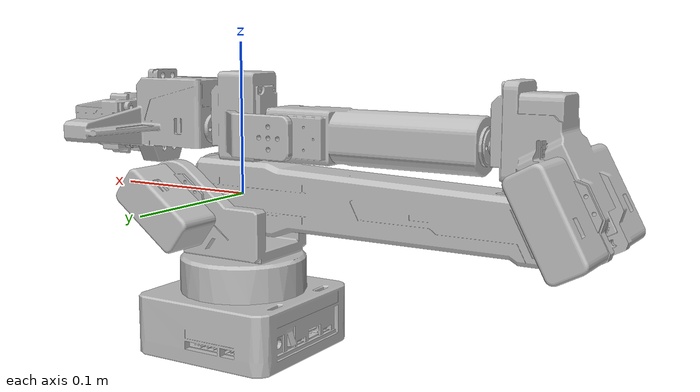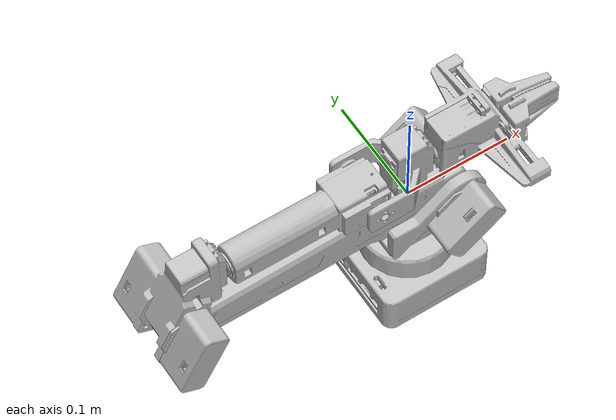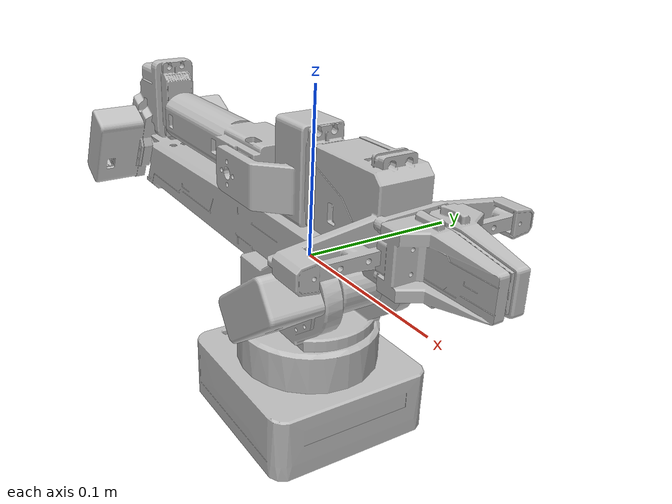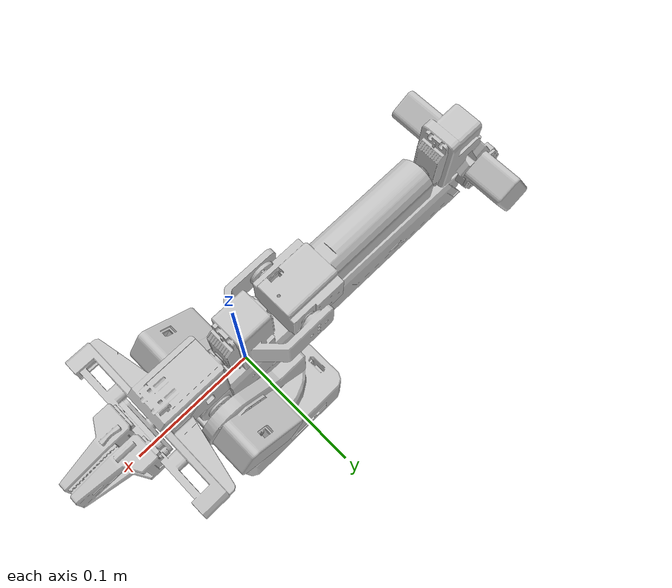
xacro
<?xml version="1.0" encoding="utf-8"?>
<robot
  name="zyarm_x1_standard"
  xmlns:xacro="http://www.ros.org/wiki/xacro">
  <!-- use_ros2_control=false: 只做模型显示或真机串口桥接 -->
  <!-- use_ros2_control=true:  展开 ros2_control 标签，供控制器链和 MoveIt 仿真链使用 -->
  <xacro:arg name="use_ros2_control" default="true" />
  <xacro:arg name="use_gazebo" default="false" />
  <xacro:arg name="use_sim_cameras" default="false" />
  <xacro:arg name="use_real_hardware_interface" default="false" />
  <xacro:arg name="real_hardware_port" default="/dev/ttyUSB0" />
  <xacro:arg name="real_hardware_baud_rate" default="230400" />
  <xacro:arg name="real_hardware_read_timeout_ms" default="20" />
  <xacro:arg name="real_hardware_write_timeout_ms" default="20" />
  <xacro:arg name="real_hardware_activation_status_timeout_ms" default="1000" />
  <xacro:arg name="real_hardware_status_stale_warn_ms" default="100" />
  <xacro:arg name="real_hardware_status_stale_error_ms" default="1000" />
  <xacro:arg name="real_hardware_stale_log_period_ms" default="2000" />
  <xacro:arg name="real_hardware_reset_rts_dtr" default="false" />
  <xacro:arg name="real_hardware_reset_rts_dtr_quiet_ms" default="0" />
  <xacro:arg name="real_hardware_arm_hw_offsets_deg" default="0 -180 90 0 0 0" />
  <xacro:arg name="real_hardware_arm_hw_signs" default="1 1 1 1 1 1" />
  <xacro:arg name="real_hardware_claw_travel_m" default="0.034" />
  <xacro:arg name="real_hardware_claw_command_max" default="100" />
  <xacro:arg
    name="gazebo_camera_config_file"
    default="" />
  <xacro:arg
    name="gazebo_controller_config_file"
    default="" />
  <xacro:property name="use_ros2_control" value="$(arg use_ros2_control)" />
  <xacro:property name="use_gazebo" value="$(arg use_gazebo)" />
  <xacro:property name="use_sim_cameras" value="$(arg use_sim_cameras)" />
  <xacro:property name="use_real_hardware_interface" value="$(arg use_real_hardware_interface)" />
  <xacro:property name="arm_effort_limit" value="60.0" />
  <xacro:property name="gripper_effort_limit" value="160.0" />
  <xacro:property name="arm_base_velocity_limit" value="3.0" />
  <xacro:property name="arm_wrist_velocity_limit" value="4.0" />
  <xacro:property name="gripper_velocity_limit" value="0.12" />
  <xacro:property
    name="gazebo_camera_config_file"
    value="$(arg gazebo_camera_config_file)" />
  <xacro:property
    name="gazebo_controller_config_file"
    value="$(arg gazebo_controller_config_file)" />
  <!-- 下方主体仍基本保持 SolidWorks 导出结构，减少手工改动带来的模型漂移。 -->
  <link
    name="base_link">
    <inertial>
      <origin
        xyz="0.00091157 -0.00062627 -0.075733"
        rpy="0 0 0" />
      <mass
        value="0.26029" />
      <inertia
        ixx="0.00028525"
        ixy="-9.6012E-07"
        ixz="4.2857E-06"
        iyy="0.00026365"
        iyz="-1.2773E-06"
        izz="0.00047532" />
    </inertial>
    <visual>
      <origin
        xyz="0 0 0"
        rpy="0 0 0" />
      <geometry>
        <mesh
          filename="package://zyarm_description/meshes/x1_standard/base_link.STL" />
      </geometry>
      <material
        name="">
        <color
          rgba="0.75294 0.75294 0.75294 1" />
      </material>
    </visual>
    <collision>
      <origin
        xyz="0 0 0"
        rpy="0 0 0" />
      <geometry>
        <mesh
          filename="package://zyarm_description/meshes/x1_standard/base_link.STL" />
      </geometry>
    </collision>
  </link>
  <link
    name="link1">
    <inertial>
      <origin
        xyz="0.018353 -7.2605E-08 -0.013108"
        rpy="0 0 0" />
      <mass
        value="0.12888" />
      <inertia
        ixx="6.1663E-05"
        ixy="1.6593E-10"
        ixz="-1.5674E-05"
        iyy="8.0681E-05"
        iyz="-2.0696E-10"
        izz="8.7038E-05" />
    </inertial>
    <visual>
      <origin
        xyz="0 0 0"
        rpy="0 0 0" />
      <geometry>
        <mesh
          filename="package://zyarm_description/meshes/x1_standard/link1.STL" />
      </geometry>
      <material
        name="">
        <color
          rgba="0.75294 0.75294 0.75294 1" />
      </material>
    </visual>
    <collision>
      <origin
        xyz="0 0 0"
        rpy="0 0 0" />
      <geometry>
        <mesh
          filename="package://zyarm_description/meshes/x1_standard/link1.STL" />
      </geometry>
    </collision>
  </link>
  <joint
    name="joint0"
    type="revolute">
    <origin
      xyz="0 0 0"
      rpy="0 0 0" />
    <parent
      link="base_link" />
    <child
      link="link1" />
    <axis
      xyz="0 0 1" />
    <limit
      lower="-3.1415"
      upper="3.1415"
      effort="${arm_effort_limit}"
      velocity="${arm_base_velocity_limit}" />
  </joint>
  <link
    name="link2">
    <inertial>
      <origin
        xyz="0.1142 -0.0004833 4.5225E-07"
        rpy="0 0 0" />
      <mass
        value="0.18935" />
      <inertia
        ixx="4.7355E-05"
        ixy="1.0633E-05"
        ixz="3.8212E-10"
        iyy="0.00030578"
        iyz="6.2531E-13"
        izz="0.00031996" />
    </inertial>
    <visual>
      <origin
        xyz="0 0 0"
        rpy="0 0 0" />
      <geometry>
        <mesh
          filename="package://zyarm_description/meshes/x1_standard/link2.STL" />
      </geometry>
      <material
        name="">
        <color
          rgba="0.75294 0.75294 0.75294 1" />
      </material>
    </visual>
    <collision>
      <origin
        xyz="0 0 0"
        rpy="0 0 0" />
      <geometry>
        <mesh
          filename="package://zyarm_description/meshes/x1_standard/link2.STL" />
      </geometry>
    </collision>
  </link>
  <joint
    name="joint1"
    type="revolute">
    <origin
      xyz="0.037 0 0"
      rpy="-1.5708 -3.1416 0" />
    <parent
      link="link1" />
    <child
      link="link2" />
    <axis
      xyz="0 0 1" />
    <limit
      lower="-0.05"
      upper="3.17659"
      effort="${arm_effort_limit}"
      velocity="${arm_base_velocity_limit}" />
  </joint>
  <link
    name="link3">
    <inertial>
      <origin
        xyz="0.022342 0.013918 1.0102E-06"
        rpy="0 0 0" />
      <mass
        value="0.11556" />
      <inertia
        ixx="2.8305E-05"
        ixy="-1.401E-05"
        ixz="3.0938E-09"
        iyy="4.826E-05"
        iyz="1.2509E-09"
        izz="5.5117E-05" />
    </inertial>
    <visual>
      <origin
        xyz="0 0 0"
        rpy="0 0 0" />
      <geometry>
        <mesh
          filename="package://zyarm_description/meshes/x1_standard/link3.STL" />
      </geometry>
      <material
        name="">
        <color
          rgba="0.75294 0.75294 0.75294 1" />
      </material>
    </visual>
    <collision>
      <origin
        xyz="0 0 0"
        rpy="0 0 0" />
      <geometry>
        <mesh
          filename="package://zyarm_description/meshes/x1_standard/link3.STL" />
      </geometry>
    </collision>
  </link>
  <joint
    name="joint2"
    type="revolute">
    <origin
      xyz="0.27 0.0024 0"
      rpy="0 0 1.5708" />
    <parent
      link="link2" />
    <child
      link="link3" />
    <axis
      xyz="0 0 1" />
    <limit
      lower="-3.1766"
      upper="0.035"
      effort="${arm_effort_limit}"
      velocity="${arm_base_velocity_limit}" />
  </joint>
  <link
    name="link4">
    <inertial>
      <origin
        xyz="3.359E-07 0.0002305 0.05375"
        rpy="0 0 0" />
      <mass
        value="0.063014" />
      <inertia
        ixx="9.4194E-05"
        ixy="-1.8203E-13"
        ixz="-4.9372E-12"
        iyy="9.4837E-05"
        iyz="3.6101E-07"
        izz="1.4643E-05" />
    </inertial>
    <visual>
      <origin
        xyz="0 0 0"
        rpy="0 0 0" />
      <geometry>
        <mesh
          filename="package://zyarm_description/meshes/x1_standard/link4.STL" />
      </geometry>
      <material
        name="">
        <color
          rgba="0.75294 0.75294 0.75294 1" />
      </material>
    </visual>
    <collision>
      <origin
        xyz="0 0 0"
        rpy="0 0 0" />
      <geometry>
        <mesh
          filename="package://zyarm_description/meshes/x1_standard/link4.STL" />
      </geometry>
    </collision>
  </link>
  <joint
    name="joint3"
    type="revolute">
    <origin
      xyz="0.039913 0.19 0"
      rpy="1.5708 0 0" />
    <parent
      link="link3" />
    <child
      link="link4" />
    <axis
      xyz="0 0 1" />
    <limit
      lower="-3.1416"
      upper="3.1416"
      effort="${arm_effort_limit}"
      velocity="${arm_wrist_velocity_limit}" />
  </joint>
  <link
    name="link5">
    <inertial>
      <origin
        xyz="0.0064731 0.033728 0.00014092"
        rpy="0 0 0" />
      <mass
        value="0.055716" />
      <inertia
        ixx="2.4408E-05"
        ixy="-1.842E-06"
        ixz="4.2863E-08"
        iyy="2.7394E-05"
        iyz="2.2654E-07"
        izz="2.3787E-05" />
    </inertial>
    <visual>
      <origin
        xyz="0 0 0"
        rpy="0 0 0" />
      <geometry>
        <mesh
          filename="package://zyarm_description/meshes/x1_standard/link5.STL" />
      </geometry>
      <material
        name="">
        <color
          rgba="0.75294 0.75294 0.75294 1" />
      </material>
    </visual>
    <collision>
      <origin
        xyz="0 0 0"
        rpy="0 0 0" />
      <geometry>
        <mesh
          filename="package://zyarm_description/meshes/x1_standard/link5.STL" />
      </geometry>
    </collision>
  </link>
  <joint
    name="joint4"
    type="revolute">
    <origin
      xyz="0 0 0"
      rpy="-1.5708 0 0" />
    <parent
      link="link4" />
    <child
      link="link5" />
    <axis
      xyz="0 0 1" />
    <limit
      lower="-1.745"
      upper="1.745"
      effort="${arm_effort_limit}"
      velocity="${arm_wrist_velocity_limit}" />
  </joint>
  <link
    name="link6">
    <inertial>
      <origin
        xyz="0.0056408 7.3513E-06 -0.10669"
        rpy="0 0 0" />
      <mass
        value="0.073553" />
      <inertia
        ixx="6.3575E-05"
        ixy="5.4249E-08"
        ixz="-2.3601E-06"
        iyy="2.4372E-05"
        iyz="5.4471E-09"
        izz="5.8246E-05" />
    </inertial>
    <visual>
      <origin
        xyz="0 0 0"
        rpy="0 0 0" />
      <geometry>
        <mesh
          filename="package://zyarm_description/meshes/x1_standard/link6.STL" />
      </geometry>
      <material
        name="">
        <color
          rgba="0.75294 0.75294 0.75294 1" />
      </material>
    </visual>
    <collision>
      <origin
        xyz="0 0 0"
        rpy="0 0 0" />
      <geometry>
        <mesh
          filename="package://zyarm_description/meshes/x1_standard/link6.STL" />
      </geometry>
    </collision>
  </link>
  <joint
    name="joint5"
    type="revolute">
    <origin
      xyz="0 0 0"
      rpy="1.5708 0 0" />
    <parent
      link="link5" />
    <child
      link="link6" />
    <axis
      xyz="0 0 1" />
    <limit
      lower="-3.1416"
      upper="3.1416"
      effort="${arm_effort_limit}"
      velocity="${arm_wrist_velocity_limit}" />
  </joint>
  <link
    name="claw1">
    <inertial>
      <origin
        xyz="0.0089049 0.035115 5.5012E-05"
        rpy="0 0 0" />
      <mass
        value="0.020468" />
      <inertia
        ixx="5.8019E-06"
        ixy="-6.6705E-07"
        ixz="-8.8771E-09"
        iyy="2.5773E-06"
        iyz="-2.527E-08"
        izz="4.3825E-06" />
    </inertial>
    <visual>
      <origin
        xyz="0 0 0"
        rpy="0 0 0" />
      <geometry>
        <mesh
          filename="package://zyarm_description/meshes/x1_standard/claw1.STL" />
      </geometry>
      <material
        name="">
        <color
          rgba="0.75294 0.75294 0.75294 1" />
      </material>
    </visual>
    <collision>
      <origin
        xyz="0 0 0"
        rpy="0 0 0" />
      <geometry>
        <mesh
          filename="package://zyarm_description/meshes/x1_standard/claw1.STL" />
      </geometry>
    </collision>
  </link>
  <joint
    name="joint6"
    type="prismatic">
    <origin
      xyz="0 0 -0.18675"
      rpy="1.5708 0 -1.5708" />
    <parent
      link="link6" />
    <child
      link="claw1" />
    <axis
      xyz="1 0 0" />
    <limit
      lower="0"
      upper="0.034"
      effort="${gripper_effort_limit}"
      velocity="${gripper_velocity_limit}" />
  </joint>
  <link
    name="claw2">
    <inertial>
      <origin
        xyz="0.0089049 0.035115 5.5012E-05"
        rpy="0 0 0" />
      <mass
        value="0.020468" />
      <inertia
        ixx="5.8019E-06"
        ixy="-6.6705E-07"
        ixz="-8.8771E-09"
        iyy="2.5773E-06"
        iyz="-2.527E-08"
        izz="4.3825E-06" />
    </inertial>
    <visual>
      <origin
        xyz="0 0 0"
        rpy="0 0 0" />
      <geometry>
        <mesh
          filename="package://zyarm_description/meshes/x1_standard/claw2.STL" />
      </geometry>
      <material
        name="">
        <color
          rgba="0.75294 0.75294 0.75294 1" />
      </material>
    </visual>
    <collision>
      <origin
        xyz="0 0 0"
        rpy="0 0 0" />
      <geometry>
        <mesh
          filename="package://zyarm_description/meshes/x1_standard/claw2.STL" />
      </geometry>
    </collision>
  </link>
  <joint
    name="joint7"
    type="prismatic">
    <origin
      xyz="0 0 -0.18675"
      rpy="1.5708 0 1.5708" />
    <parent
      link="link6" />
    <child
      link="claw2" />
    <axis
      xyz="1 0 0" />
    <xacro:unless value="${use_gazebo}">
      <mimic
        joint="joint6"
        multiplier="1.0"
        offset="0.0" />
    </xacro:unless>
    <limit
      lower="0"
      upper="0.034"
      effort="${gripper_effort_limit}"
      velocity="${gripper_velocity_limit}" />
  </joint>
  <link name="ee_link" />
  <joint name="ee_fixed_joint" type="fixed">
    <parent link="link6" />
    <child link="ee_link" />
    <origin xyz="0 0 -0.18675" rpy="1.5708 0 0" />
  </joint>
  <xacro:if value="${use_sim_cameras}">
    <xacro:property
      name="gazebo_camera_frames"
      value="${xacro.load_yaml(gazebo_camera_config_file)['camera_frames']}" />
    <link name="${gazebo_camera_frames['fixed']['link_frame']}" />
    <joint name="camera_fixed_joint" type="fixed">
      <parent link="base_link" />
      <child link="${gazebo_camera_frames['fixed']['link_frame']}" />
      <origin xyz="0.05 -0.30 0.45" rpy="-1.1 0 0" />
    </joint>
    <link name="${gazebo_camera_frames['fixed']['optical_frame']}" />
    <joint name="camera_fixed_optical_joint" type="fixed">
      <parent link="${gazebo_camera_frames['fixed']['link_frame']}" />
      <child link="${gazebo_camera_frames['fixed']['optical_frame']}" />
      <origin xyz="0 0 0" rpy="-1.5708 0 -1.5708" />
    </joint>
    <link name="${gazebo_camera_frames['wrist']['link_frame']}" />
    <joint name="camera_wrist_joint" type="fixed">
      <parent link="ee_link" />
      <child link="${gazebo_camera_frames['wrist']['link_frame']}" />
      <origin xyz="0.04 0.0 0.02" rpy="-1.57 0 -1.57" />
    </joint>
    <link name="${gazebo_camera_frames['wrist']['optical_frame']}" />
    <joint name="camera_wrist_optical_joint" type="fixed">
      <parent link="${gazebo_camera_frames['wrist']['link_frame']}" />
      <child link="${gazebo_camera_frames['wrist']['optical_frame']}" />
      <origin xyz="0 0 0" rpy="-1.5708 0 -1.5708" />
    </joint>
  </xacro:if>
  <xacro:if value="${use_ros2_control}">
    <ros2_control name="ZyarmX1StandardSystem" type="system">
      <hardware>
        <xacro:if value="${use_real_hardware_interface}">
          <plugin>zyarm_hardware_interface/ZyArmSystemHardware</plugin>
          <param name="port">$(arg real_hardware_port)</param>
          <param name="baud_rate">$(arg real_hardware_baud_rate)</param>
          <param name="read_timeout_ms">$(arg real_hardware_read_timeout_ms)</param>
          <param name="write_timeout_ms">$(arg real_hardware_write_timeout_ms)</param>
          <param name="activation_status_timeout_ms">$(arg real_hardware_activation_status_timeout_ms)</param>
          <param name="status_stale_warn_ms">$(arg real_hardware_status_stale_warn_ms)</param>
          <param name="status_stale_error_ms">$(arg real_hardware_status_stale_error_ms)</param>
          <param name="stale_log_period_ms">$(arg real_hardware_stale_log_period_ms)</param>
          <param name="reset_rts_dtr">$(arg real_hardware_reset_rts_dtr)</param>
          <param name="reset_rts_dtr_quiet_ms">$(arg real_hardware_reset_rts_dtr_quiet_ms)</param>
          <param name="arm_hw_offsets_deg">$(arg real_hardware_arm_hw_offsets_deg)</param>
          <param name="arm_hw_signs">$(arg real_hardware_arm_hw_signs)</param>
          <param name="claw_travel_m">$(arg real_hardware_claw_travel_m)</param>
          <param name="claw_command_max">$(arg real_hardware_claw_command_max)</param>
        </xacro:if>
        <xacro:unless value="${use_real_hardware_interface}">
          <xacro:if value="${use_gazebo}">
            <plugin>gz_ros2_control/GazeboSimSystem</plugin>
          </xacro:if>
          <xacro:unless value="${use_gazebo}">
            <plugin>mock_components/GenericSystem</plugin>
          </xacro:unless>
        </xacro:unless>
      </hardware>
      <joint name="joint0">
        <command_interface name="position" />
        <state_interface name="position" />
        <xacro:unless value="${use_real_hardware_interface}">
          <state_interface name="velocity" />
        </xacro:unless>
      </joint>
      <joint name="joint1">
        <command_interface name="position" />
        <state_interface name="position" />
        <xacro:unless value="${use_real_hardware_interface}">
          <state_interface name="velocity" />
        </xacro:unless>
      </joint>
      <joint name="joint2">
        <command_interface name="position" />
        <state_interface name="position" />
        <xacro:unless value="${use_real_hardware_interface}">
          <state_interface name="velocity" />
        </xacro:unless>
      </joint>
      <joint name="joint3">
        <command_interface name="position" />
        <state_interface name="position" />
        <xacro:unless value="${use_real_hardware_interface}">
          <state_interface name="velocity" />
        </xacro:unless>
      </joint>
      <joint name="joint4">
        <command_interface name="position" />
        <state_interface name="position" />
        <xacro:unless value="${use_real_hardware_interface}">
          <state_interface name="velocity" />
        </xacro:unless>
      </joint>
      <joint name="joint5">
        <command_interface name="position" />
        <state_interface name="position" />
        <xacro:unless value="${use_real_hardware_interface}">
          <state_interface name="velocity" />
        </xacro:unless>
      </joint>
      <joint name="joint6">
        <command_interface name="position" />
        <state_interface name="position" />
        <xacro:unless value="${use_real_hardware_interface}">
          <state_interface name="velocity" />
        </xacro:unless>
      </joint>
      <xacro:if value="${use_gazebo and not use_real_hardware_interface}">
        <joint name="joint7">
          <command_interface name="position" />
          <state_interface name="position" />
          <state_interface name="velocity" />
        </joint>
      </xacro:if>
    </ros2_control>
  </xacro:if>
  <xacro:if value="${use_gazebo}">
    <xacro:if value="${use_ros2_control}">
      <gazebo>
        <plugin filename="libgz_ros2_control-system.so" name="gz_ros2_control::GazeboSimROS2ControlPlugin">
          <controller_manager_name>zyarm_x1_standard_controller_manager</controller_manager_name>
          <xacro:if value="${gazebo_controller_config_file != ''}">
            <parameters>${gazebo_controller_config_file}</parameters>
          </xacro:if>
          <xacro:unless value="${gazebo_controller_config_file != ''}">
            <parameters>$(find zyarm_control)/config/zyarm_x1_standard_gazebo_controllers.yaml</parameters>
          </xacro:unless>
        </plugin>
      </gazebo>
    </xacro:if>
  </xacro:if>
  <xacro:if value="${use_gazebo}">
    <xacro:if value="${use_sim_cameras}">
      <gazebo reference="${gazebo_camera_frames['fixed']['link_frame']}">
        <sensor name="fixed_rgb" type="camera">
          <always_on>true</always_on>
          <update_rate>30</update_rate>
          <topic>${gazebo_camera_frames['fixed']['image_topic']}</topic>
          <camera>
            <horizontal_fov>1.05</horizontal_fov>
            <image>
              <width>640</width>
              <height>480</height>
              <format>R8G8B8</format>
            </image>
            <clip>
              <near>0.01</near>
              <far>5.0</far>
            </clip>
          </camera>
        </sensor>
      </gazebo>
      <gazebo reference="${gazebo_camera_frames['wrist']['link_frame']}">
        <sensor name="wrist_rgb" type="camera">
          <always_on>true</always_on>
          <update_rate>30</update_rate>
          <topic>${gazebo_camera_frames['wrist']['image_topic']}</topic>
          <camera>
            <horizontal_fov>1.10</horizontal_fov>
            <image>
              <width>640</width>
              <height>480</height>
              <format>R8G8B8</format>
            </image>
            <clip>
              <near>0.01</near>
              <far>3.0</far>
            </clip>
          </camera>
        </sensor>
      </gazebo>
    </xacro:if>
  </xacro:if>
</robot>
